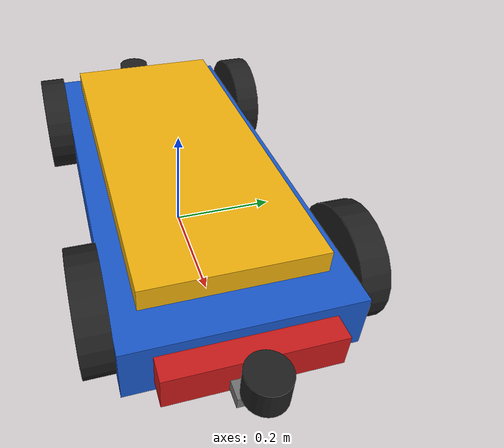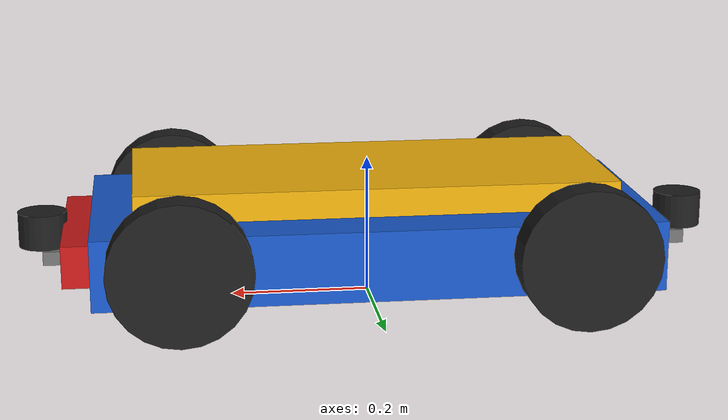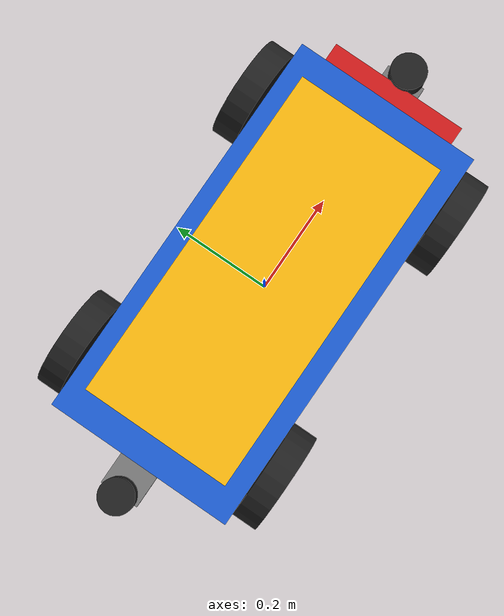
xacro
<?xml version="1.0"?>
<robot name="yektemak_robot" xmlns:xacro="http://www.ros.org/wiki/xacro">

  <!-- Gazebo eklentilerini (sürüş, sensör, ros2_control) dahil et.
       RVizde sadece modeli gormek icin use_sim argumanini false verin -->
  <xacro:arg name="use_sim" default="true"/>

  <xacro:arg name="ns" default=""/>
  <xacro:property name="ns" value="$(arg ns)"/>
  <xacro:property name="prefix" value="${ns + '/' if ns else ''}"/>

  <!-- Gazebo govde rengi (Gazebo/Blue, Gazebo/Orange ...) -->
  <xacro:arg name="body_color" default="Blue"/>
  <xacro:property name="body_color" value="$(arg body_color)"/>

  <xacro:include filename="yektemak_materials.xacro"/>
  <xacro:include filename="yektemak_base.xacro"/>
  <xacro:include filename="yektemak_wheels.xacro"/>
  <xacro:include filename="yektemak_lift.xacro"/>
  <xacro:include filename="yektemak_markers.xacro"/>
  <!-- LiDAR duzeni - front_rear (fabrika, on + arka) ya da corners (liman, 4 kose) -->
  <xacro:arg name="lidar_layout" default="front_rear"/>
  <xacro:include filename="yektemak_sensors.xacro"/>
  <xacro:if value="${'$(arg lidar_layout)' == 'corners'}">
    <xacro:include filename="yektemak_corner_lidars.xacro"/>
  </xacro:if>

  <xacro:if value="$(arg use_sim)">
    <xacro:include filename="yektemak_ros2_control.xacro"/>
    <xacro:include filename="yektemak_gazebo.xacro"/>
  </xacro:if>

</robot>

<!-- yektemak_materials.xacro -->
<robot xmlns:xacro="http://www.ros.org/wiki/xacro">

  <material name="yektemak_blue">
    <color rgba="0.10 0.35 0.80 1.0"/>
  </material>

  <material name="yektemak_dark">
    <color rgba="0.12 0.12 0.12 1.0"/>
  </material>

  <material name="yektemak_gray">
    <color rgba="0.45 0.45 0.45 1.0"/>
  </material>

  <material name="yektemak_red">
    <color rgba="0.80 0.10 0.10 1.0"/>
  </material>

  <material name="yektemak_yellow">
    <color rgba="0.95 0.70 0.05 1.0"/>
  </material>

</robot>

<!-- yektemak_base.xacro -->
<robot xmlns:xacro="http://www.ros.org/wiki/xacro">

  <!-- Temel gövde ölçüleri metre cinsindedir. -->
  <xacro:property name="base_length" value="0.80"/>
  <xacro:property name="base_width" value="0.38"/>
  <xacro:property name="base_height" value="0.10"/>

  <!-- Gövdenin yerden yüksekliği -->
  <xacro:property name="base_ground_clearance" value="0.04"/>

  <!-- Yaklaşık gövde kütlesi -->
  <xacro:property name="base_mass" value="80.0"/>

  <!-- Zemindeki referans noktası -->
  <link name="base_footprint"/>

  <!-- Robotun ana gövde bağlantısı -->
  <link name="base_link">

    <visual>
      <origin xyz="0 0 0" rpy="0 0 0"/>

      <geometry>
        <box size="${base_length} ${base_width} ${base_height}"/>
      </geometry>

      <material name="yektemak_blue"/>
    </visual>

    <collision>
      <origin xyz="0 0 0" rpy="0 0 0"/>

      <geometry>
        <box size="${base_length} ${base_width} ${base_height}"/>
      </geometry>
    </collision>

    <inertial>
      <origin xyz="0 0 0" rpy="0 0 0"/>

      <mass value="${base_mass}"/>

      <inertia
        ixx="${base_mass * (base_width * base_width + base_height * base_height) / 12.0}"
        ixy="0.0"
        ixz="0.0"
        iyy="${base_mass * (base_length * base_length + base_height * base_height) / 12.0}"
        iyz="0.0"
        izz="${base_mass * (base_length * base_length + base_width * base_width) / 12.0}"/>
    </inertial>

  </link>

  <!-- base_footprint ile gövde arasındaki sabit bağlantı -->
  <joint name="base_footprint_joint" type="fixed">

    <parent link="base_footprint"/>
    <child link="base_link"/>

    <origin
      xyz="0 0 ${base_ground_clearance + base_height / 2.0}"
      rpy="0 0 0"/>

  </joint>

</robot>

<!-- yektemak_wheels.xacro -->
<robot xmlns:xacro="http://www.ros.org/wiki/xacro">

  <!-- Teker parametreleri -->
  <xacro:property name="wheel_radius" value="0.10"/>
  <xacro:property name="wheel_width" value="0.05"/>
  <xacro:property name="wheel_mass" value="2.0"/>

  <!-- Tekerlerin gövde üzerindeki konumları -->
  <xacro:property name="wheel_x_position" value="0.28"/>

  <xacro:property
    name="wheel_y_position"
    value="${base_width / 2.0 + wheel_width / 2.0}"/>

  <!-- base_link merkezine göre teker merkezi -->
  <xacro:property
    name="wheel_z_position"
    value="${wheel_radius - (base_ground_clearance + base_height / 2.0)}"/>

  <!-- Tek bir teker oluşturan makro -->
  <xacro:macro name="yektemak_wheel" params="wheel_name x_position y_position">

    <link name="${wheel_name}_wheel_link">

      <visual>
        <origin xyz="0 0 0" rpy="${pi / 2.0} 0 0"/>

        <geometry>
          <cylinder
            radius="${wheel_radius}"
            length="${wheel_width}"/>
        </geometry>

        <material name="yektemak_dark"/>
      </visual>

      <collision>
        <origin xyz="0 0 0" rpy="${pi / 2.0} 0 0"/>

        <geometry>
          <cylinder
            radius="${wheel_radius}"
            length="${wheel_width}"/>
        </geometry>
      </collision>

      <inertial>
        <origin xyz="0 0 0" rpy="0 0 0"/>

        <mass value="${wheel_mass}"/>

        <inertia
          ixx="${wheel_mass * (3.0 * wheel_radius * wheel_radius + wheel_width * wheel_width) / 12.0}"
          ixy="0.0"
          ixz="0.0"
          iyy="${wheel_mass * wheel_radius * wheel_radius / 2.0}"
          iyz="0.0"
          izz="${wheel_mass * (3.0 * wheel_radius * wheel_radius + wheel_width * wheel_width) / 12.0}"/>
      </inertial>

    </link>

    <joint name="${wheel_name}_wheel_joint" type="continuous">

      <parent link="base_link"/>
      <child link="${wheel_name}_wheel_link"/>

      <origin
        xyz="${x_position} ${y_position} ${wheel_z_position}"
        rpy="0 0 0"/>

      <axis xyz="0 1 0"/>

      <dynamics damping="0.1" friction="0.1"/>

    </joint>

  </xacro:macro>

  <!-- Ön sol teker -->
  <xacro:yektemak_wheel
    wheel_name="front_left"
    x_position="${wheel_x_position}"
    y_position="${wheel_y_position}"/>

  <!-- Ön sağ teker -->
  <xacro:yektemak_wheel
    wheel_name="front_right"
    x_position="${wheel_x_position}"
    y_position="${-wheel_y_position}"/>

  <!-- Arka sol teker -->
  <xacro:yektemak_wheel
    wheel_name="rear_left"
    x_position="${-wheel_x_position}"
    y_position="${wheel_y_position}"/>

  <!-- Arka sağ teker -->
  <xacro:yektemak_wheel
    wheel_name="rear_right"
    x_position="${-wheel_x_position}"
    y_position="${-wheel_y_position}"/>

</robot>

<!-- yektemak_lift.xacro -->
<robot xmlns:xacro="http://www.ros.org/wiki/xacro">

  <!-- Kaldırma platformu ölçüleri -->
  <xacro:property name="lift_platform_length" value="0.68"/>
  <xacro:property name="lift_platform_width" value="0.30"/>
  <xacro:property name="lift_platform_height" value="0.04"/>

  <xacro:property name="lift_platform_mass" value="6.0"/>
  <xacro:property name="lift_platform_clearance" value="0.01"/>
  <xacro:property name="lift_max_height" value="0.18"/>

  <!-- Paleti kaldıracak üst platform -->
  <link name="lift_platform_link">

    <visual>
      <origin xyz="0 0 0" rpy="0 0 0"/>

      <geometry>
        <box size="
          ${lift_platform_length}
          ${lift_platform_width}
          ${lift_platform_height}"/>
      </geometry>

      <material name="yektemak_yellow"/>
    </visual>

    <collision>
      <origin xyz="0 0 0" rpy="0 0 0"/>

      <geometry>
        <box size="
          ${lift_platform_length}
          ${lift_platform_width}
          ${lift_platform_height}"/>
      </geometry>
    </collision>

    <inertial>
      <origin xyz="0 0 0" rpy="0 0 0"/>

      <mass value="${lift_platform_mass}"/>

      <inertia
        ixx="${lift_platform_mass *
          (lift_platform_width * lift_platform_width +
           lift_platform_height * lift_platform_height) / 12.0}"
        ixy="0.0"
        ixz="0.0"
        iyy="${lift_platform_mass *
          (lift_platform_length * lift_platform_length +
           lift_platform_height * lift_platform_height) / 12.0}"
        iyz="0.0"
        izz="${lift_platform_mass *
          (lift_platform_length * lift_platform_length +
           lift_platform_width * lift_platform_width) / 12.0}"/>
    </inertial>

  </link>

  <!-- Platform yalnızca Z ekseninde hareket eder -->
  <joint name="lift_platform_joint" type="prismatic">

    <parent link="base_link"/>
    <child link="lift_platform_link"/>

    <origin
      xyz="0 0 ${base_height / 2.0 +
                 lift_platform_height / 2.0 +
                 lift_platform_clearance}"
      rpy="0 0 0"/>

    <axis xyz="0 0 1"/>

    <limit
      lower="0.0"
      upper="${lift_max_height}"
      effort="5000.0"
      velocity="0.10"/>

    <dynamics
      damping="5.0"
      friction="1.0"/>

  </joint>

</robot>

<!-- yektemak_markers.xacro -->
<robot xmlns:xacro="http://www.ros.org/wiki/xacro">

  <!-- Aracın +X yönündeki ön tarafını gösteren tampon -->
  <xacro:property name="front_marker_length" value="0.04"/>
  <xacro:property name="front_marker_width" value="0.28"/>
  <xacro:property name="front_marker_height" value="0.06"/>

  <link name="front_marker_link">

    <visual>
      <origin xyz="0 0 0" rpy="0 0 0"/>

      <geometry>
        <box
          size="${front_marker_length}
                ${front_marker_width}
                ${front_marker_height}"/>
      </geometry>

      <material name="yektemak_red"/>
    </visual>

  </link>

  <joint name="front_marker_joint" type="fixed">

    <parent link="base_link"/>
    <child link="front_marker_link"/>

    <origin
      xyz="${base_length / 2.0 + front_marker_length / 2.0}
           0
           0"
      rpy="0 0 0"/>

  </joint>

</robot>

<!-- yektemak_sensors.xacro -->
<robot xmlns:xacro="http://www.ros.org/wiki/xacro">

  <xacro:property name="lidar_height_from_ground" value="0.11"/>
  <xacro:property name="lidar_x" value="${base_length / 2.0 + 0.07}"/>
  <xacro:property name="lidar_radius" value="0.035"/>
  <xacro:property name="lidar_length" value="0.05"/>

  <xacro:if value="${'$(arg lidar_layout)' == 'front_rear'}">
  <!-- LiDAR tutucu braketi (görsel) -->
  <link name="lidar_bracket_link">
    <visual>
      <origin xyz="0 0 0" rpy="0 0 0"/>
      <geometry>
        <box size="0.07 0.08 0.02"/>
      </geometry>
      <material name="yektemak_gray"/>
    </visual>
  </link>

  <joint name="lidar_bracket_joint" type="fixed">
    <parent link="base_link"/>
    <child link="lidar_bracket_link"/>
    <origin
      xyz="${base_length / 2.0 + 0.035} 0
           ${lidar_height_from_ground - lidar_length / 2.0 - 0.01
             - (base_ground_clearance + base_height / 2.0)}"
      rpy="0 0 0"/>
  </joint>

  <!-- 2D LiDAR -->
  <link name="lidar_link">
    <visual>
      <origin xyz="0 0 0" rpy="0 0 0"/>
      <geometry>
        <cylinder radius="${lidar_radius}" length="${lidar_length}"/>
      </geometry>
      <material name="yektemak_dark"/>
    </visual>
    <collision>
      <origin xyz="0 0 0" rpy="0 0 0"/>
      <geometry>
        <cylinder radius="${lidar_radius}" length="${lidar_length}"/>
      </geometry>
    </collision>
    <inertial>
      <origin xyz="0 0 0" rpy="0 0 0"/>
      <mass value="0.3"/>
      <inertia ixx="0.0002" ixy="0" ixz="0" iyy="0.0002" iyz="0" izz="0.0002"/>
    </inertial>
  </link>

  <joint name="lidar_joint" type="fixed">
    <parent link="base_link"/>
    <child link="lidar_link"/>
    <origin
      xyz="${lidar_x} 0
           ${lidar_height_from_ground - (base_ground_clearance + base_height / 2.0)}"
      rpy="0 0 0"/>
  </joint>

  <!-- Arka 2D LiDAR - on LiDARin simetrigi, geriye bakar. Geri giderken ve
       robotlar karsilastiginda arkayi da gormek icin. Costmapte ikinci
       gozlem kaynagi olarak kullanilir. -->
  <link name="rear_lidar_bracket_link">
    <visual>
      <origin xyz="0 0 0" rpy="0 0 0"/>
      <geometry>
        <box size="0.07 0.08 0.02"/>
      </geometry>
      <material name="yektemak_gray"/>
    </visual>
  </link>

  <joint name="rear_lidar_bracket_joint" type="fixed">
    <parent link="base_link"/>
    <child link="rear_lidar_bracket_link"/>
    <origin
      xyz="${-(base_length / 2.0 + 0.035)} 0
           ${lidar_height_from_ground - lidar_length / 2.0 - 0.01
             - (base_ground_clearance + base_height / 2.0)}"
      rpy="0 0 0"/>
  </joint>

  <link name="rear_lidar_link">
    <visual>
      <origin xyz="0 0 0" rpy="0 0 0"/>
      <geometry>
        <cylinder radius="${lidar_radius}" length="${lidar_length}"/>
      </geometry>
      <material name="yektemak_dark"/>
    </visual>
    <collision>
      <origin xyz="0 0 0" rpy="0 0 0"/>
      <geometry>
        <cylinder radius="${lidar_radius}" length="${lidar_length}"/>
      </geometry>
    </collision>
    <inertial>
      <origin xyz="0 0 0" rpy="0 0 0"/>
      <mass value="0.3"/>
      <inertia ixx="0.0002" ixy="0" ixz="0" iyy="0.0002" iyz="0" izz="0.0002"/>
    </inertial>
  </link>

  <joint name="rear_lidar_joint" type="fixed">
    <parent link="base_link"/>
    <child link="rear_lidar_link"/>
    <origin
      xyz="${-lidar_x} 0
           ${lidar_height_from_ground - (base_ground_clearance + base_height / 2.0)}"
      rpy="0 0 ${pi}"/>
  </joint>

  </xacro:if>

  <!-- IMU - gövde merkezinde -->
  <link name="imu_link">
    <visual>
      <origin xyz="0 0 0" rpy="0 0 0"/>
      <geometry>
        <box size="0.04 0.03 0.01"/>
      </geometry>
      <material name="yektemak_red"/>
    </visual>
  </link>

  <joint name="imu_joint" type="fixed">
    <parent link="base_link"/>
    <child link="imu_link"/>
    <origin xyz="0 0 ${base_height / 2.0 + 0.005}" rpy="0 0 0"/>
  </joint>

</robot>
